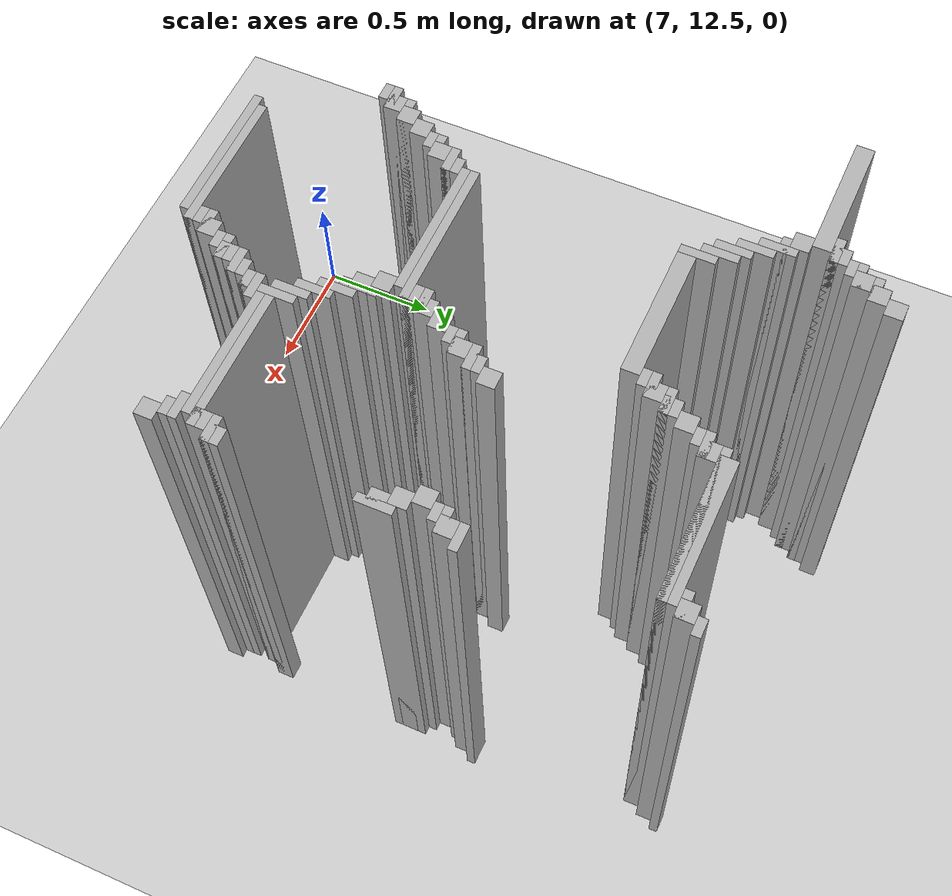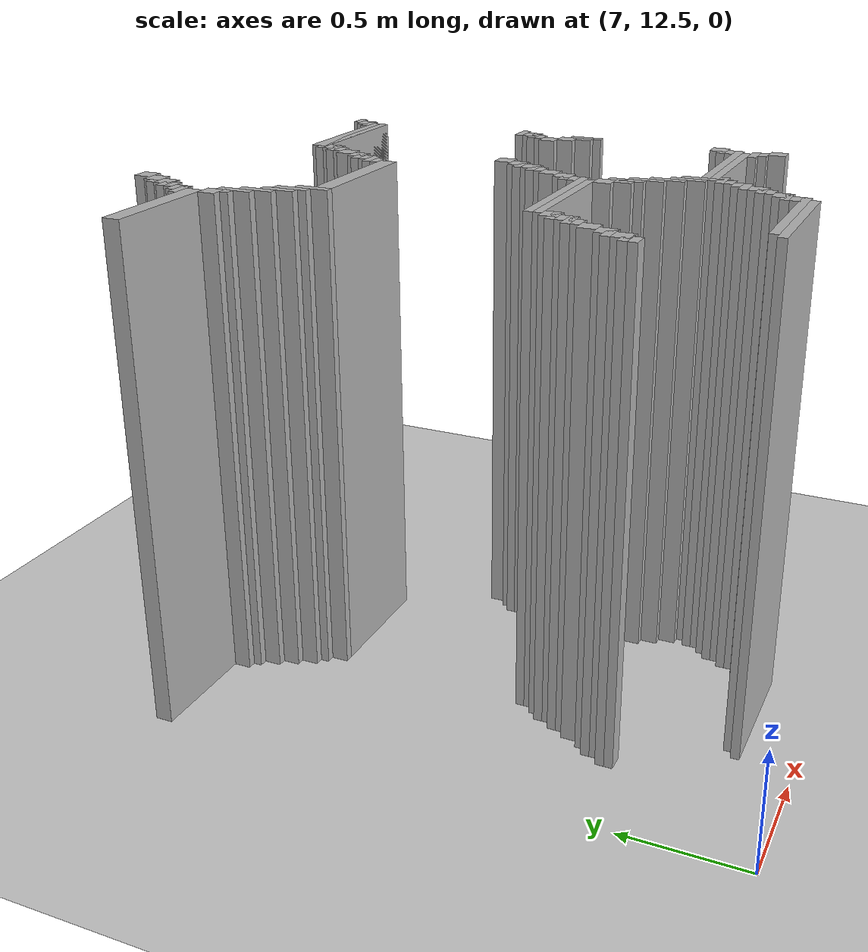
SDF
<sdf version="1.6">
 <world name="slam_world">
  <model name="ground_plane">
   <static>true</static>
   <link name="link">
    <collision name="collision">
     <geometry><plane><normal>0 0 1</normal><size>100 100</size></plane></geometry>
    </collision>
    <visual name="visual">
     <geometry><plane><normal>0 0 1</normal><size>100 100</size></plane></geometry>
     <material>
      <ambient>0.8 0.8 0.8 1</ambient>
      <diffuse>0.8 0.8 0.8 1</diffuse>
      <specular>0.8 0.8 0.8 1</specular>
     </material>
    </visual>
   </link>
  </model>
  <model name="wall_772">
   <static>true</static>
   <pose>7.552204176334106 15.139211136890951 1.0 0 0 0</pose>
   <link name="link">
    <collision name="collision">
     <geometry><box><size>0.06960556844547564 0.06960556844547564 2.0</size></box></geometry>
    </collision>
    <visual name="visual">
     <geometry><box><size>0.06960556844547564 0.06960556844547564 2.0</size></box></geometry>
     <material><ambient>0.5 0.5 0.5 1</ambient><diffuse>0.7 0.7 0.7 1</diffuse></material>
    </visual>
   </link>
  </model>
  <model name="wall_789">
   <static>true</static>
   <pose>7.517401392111369 15.069605568445475 1.0 0 0 0</pose>
   <link name="link">
    <collision name="collision">
     <geometry><box><size>0.06960556844547564 0.06960556844547564 2.0</size></box></geometry>
    </collision>
    <visual name="visual">
     <geometry><box><size>0.06960556844547564 0.06960556844547564 2.0</size></box></geometry>
     <material><ambient>0.5 0.5 0.5 1</ambient><diffuse>0.7 0.7 0.7 1</diffuse></material>
    </visual>
   </link>
  </model>
  <model name="wall_806">
   <static>true</static>
   <pose>7.5 15.052204176334106 1.0 0 0 0</pose>
   <link name="link">
    <collision name="collision">
     <geometry><box><size>0.10440835266821345 0.03480278422273782 2.0</size></box></geometry>
    </collision>
    <visual name="visual">
     <geometry><box><size>0.10440835266821345 0.03480278422273782 2.0</size></box></geometry>
     <material><ambient>0.5 0.5 0.5 1</ambient><diffuse>0.7 0.7 0.7 1</diffuse></material>
    </visual>
   </link>
  </model>
  <model name="wall_820">
   <static>true</static>
   <pose>7.48259860788863 15.0 1.0 0 0 0</pose>
   <link name="link">
    <collision name="collision">
     <geometry><box><size>0.06960556844547564 0.06960556844547564 2.0</size></box></geometry>
    </collision>
    <visual name="visual">
     <geometry><box><size>0.06960556844547564 0.06960556844547564 2.0</size></box></geometry>
     <material><ambient>0.5 0.5 0.5 1</ambient><diffuse>0.7 0.7 0.7 1</diffuse></material>
    </visual>
   </link>
  </model>
  <model name="wall_833">
   <static>true</static>
   <pose>7.465197215777262 14.982598607888631 1.0 0 0 0</pose>
   <link name="link">
    <collision name="collision">
     <geometry><box><size>0.10440835266821345 0.03480278422273782 2.0</size></box></geometry>
    </collision>
    <visual name="visual">
     <geometry><box><size>0.10440835266821345 0.03480278422273782 2.0</size></box></geometry>
     <material><ambient>0.5 0.5 0.5 1</ambient><diffuse>0.7 0.7 0.7 1</diffuse></material>
    </visual>
   </link>
  </model>
  <model name="wall_846">
   <static>true</static>
   <pose>7.447795823665893 14.947795823665892 1.0 0 0 0</pose>
   <link name="link">
    <collision name="collision">
     <geometry><box><size>0.06960556844547564 0.03480278422273782 2.0</size></box></geometry>
    </collision>
    <visual name="visual">
     <geometry><box><size>0.06960556844547564 0.03480278422273782 2.0</size></box></geometry>
     <material><ambient>0.5 0.5 0.5 1</ambient><diffuse>0.7 0.7 0.7 1</diffuse></material>
    </visual>
   </link>
  </model>
  <model name="wall_847">
   <static>true</static>
   <pose>8.909512761020881 14.947795823665892 1.0 0 0 0</pose>
   <link name="link">
    <collision name="collision">
     <geometry><box><size>0.06960556844547564 0.03480278422273782 2.0</size></box></geometry>
    </collision>
    <visual name="visual">
     <geometry><box><size>0.06960556844547564 0.03480278422273782 2.0</size></box></geometry>
     <material><ambient>0.5 0.5 0.5 1</ambient><diffuse>0.7 0.7 0.7 1</diffuse></material>
    </visual>
   </link>
  </model>
  <model name="wall_859">
   <static>true</static>
   <pose>7.412993039443156 14.895591647331786 1.0 0 0 0</pose>
   <link name="link">
    <collision name="collision">
     <geometry><box><size>0.06960556844547564 0.06960556844547564 2.0</size></box></geometry>
    </collision>
    <visual name="visual">
     <geometry><box><size>0.06960556844547564 0.06960556844547564 2.0</size></box></geometry>
     <material><ambient>0.5 0.5 0.5 1</ambient><diffuse>0.7 0.7 0.7 1</diffuse></material>
    </visual>
   </link>
  </model>
  <model name="wall_860">
   <static>true</static>
   <pose>8.874709976798144 14.895591647331786 1.0 0 0 0</pose>
   <link name="link">
    <collision name="collision">
     <geometry><box><size>0.06960556844547564 0.06960556844547564 2.0</size></box></geometry>
    </collision>
    <visual name="visual">
     <geometry><box><size>0.06960556844547564 0.06960556844547564 2.0</size></box></geometry>
     <material><ambient>0.5 0.5 0.5 1</ambient><diffuse>0.7 0.7 0.7 1</diffuse></material>
    </visual>
   </link>
  </model>
  <model name="wall_871">
   <static>true</static>
   <pose>7.395591647331786 14.878190255220417 1.0 0 0 0</pose>
   <link name="link">
    <collision name="collision">
     <geometry><box><size>0.10440835266821345 0.03480278422273782 2.0</size></box></geometry>
    </collision>
    <visual name="visual">
     <geometry><box><size>0.10440835266821345 0.03480278422273782 2.0</size></box></geometry>
     <material><ambient>0.5 0.5 0.5 1</ambient><diffuse>0.7 0.7 0.7 1</diffuse></material>
    </visual>
   </link>
  </model>
  <model name="wall_872">
   <static>true</static>
   <pose>8.857308584686775 14.878190255220417 1.0 0 0 0</pose>
   <link name="link">
    <collision name="collision">
     <geometry><box><size>0.10440835266821345 0.03480278422273782 2.0</size></box></geometry>
    </collision>
    <visual name="visual">
     <geometry><box><size>0.10440835266821345 0.03480278422273782 2.0</size></box></geometry>
     <material><ambient>0.5 0.5 0.5 1</ambient><diffuse>0.7 0.7 0.7 1</diffuse></material>
    </visual>
   </link>
  </model>
  <model name="wall_881">
   <static>true</static>
   <pose>7.16937354988399 14.825986078886311 1.0 0 0 0</pose>
   <link name="link">
    <collision name="collision">
     <geometry><box><size>0.4872389791183295 0.06960556844547564 2.0</size></box></geometry>
    </collision>
    <visual name="visual">
     <geometry><box><size>0.4872389791183295 0.06960556844547564 2.0</size></box></geometry>
     <material><ambient>0.5 0.5 0.5 1</ambient><diffuse>0.7 0.7 0.7 1</diffuse></material>
    </visual>
   </link>
  </model>
  <model name="wall_882">
   <static>true</static>
   <pose>8.596287703016241 14.825986078886311 1.0 0 0 0</pose>
   <link name="link">
    <collision name="collision">
     <geometry><box><size>0.5568445475638051 0.06960556844547564 2.0</size></box></geometry>
    </collision>
    <visual name="visual">
     <geometry><box><size>0.5568445475638051 0.06960556844547564 2.0</size></box></geometry>
     <material><ambient>0.5 0.5 0.5 1</ambient><diffuse>0.7 0.7 0.7 1</diffuse></material>
    </visual>
   </link>
  </model>
  <model name="wall_897">
   <static>true</static>
   <pose>8.578886310904872 14.80858468677494 1.0 0 0 0</pose>
   <link name="link">
    <collision name="collision">
     <geometry><box><size>0.5916473317865429 0.03480278422273782 2.0</size></box></geometry>
    </collision>
    <visual name="visual">
     <geometry><box><size>0.5916473317865429 0.03480278422273782 2.0</size></box></geometry>
     <material><ambient>0.5 0.5 0.5 1</ambient><diffuse>0.7 0.7 0.7 1</diffuse></material>
    </visual>
   </link>
  </model>
  <model name="wall_910">
   <static>true</static>
   <pose>7.412993039443156 14.756380510440835 1.0 0 0 0</pose>
   <link name="link">
    <collision name="collision">
     <geometry><box><size>0.06960556844547564 0.06960556844547564 2.0</size></box></geometry>
    </collision>
    <visual name="visual">
     <geometry><box><size>0.06960556844547564 0.06960556844547564 2.0</size></box></geometry>
     <material><ambient>0.5 0.5 0.5 1</ambient><diffuse>0.7 0.7 0.7 1</diffuse></material>
    </visual>
   </link>
  </model>
  <model name="wall_911">
   <static>true</static>
   <pose>8.317865429234338 14.756380510440835 1.0 0 0 0</pose>
   <link name="link">
    <collision name="collision">
     <geometry><box><size>0.06960556844547564 0.06960556844547564 2.0</size></box></geometry>
    </collision>
    <visual name="visual">
     <geometry><box><size>0.06960556844547564 0.06960556844547564 2.0</size></box></geometry>
     <material><ambient>0.5 0.5 0.5 1</ambient><diffuse>0.7 0.7 0.7 1</diffuse></material>
    </visual>
   </link>
  </model>
  <model name="wall_925">
   <static>true</static>
   <pose>7.465197215777262 14.68677494199536 1.0 0 0 0</pose>
   <link name="link">
    <collision name="collision">
     <geometry><box><size>0.03480278422273782 0.13921113689095127 2.0</size></box></geometry>
    </collision>
    <visual name="visual">
     <geometry><box><size>0.03480278422273782 0.13921113689095127 2.0</size></box></geometry>
     <material><ambient>0.5 0.5 0.5 1</ambient><diffuse>0.7 0.7 0.7 1</diffuse></material>
    </visual>
   </link>
  </model>
  <model name="wall_926">
   <static>true</static>
   <pose>8.30046403712297 14.738979118329466 1.0 0 0 0</pose>
   <link name="link">
    <collision name="collision">
     <geometry><box><size>0.10440835266821345 0.03480278422273782 2.0</size></box></geometry>
    </collision>
    <visual name="visual">
     <geometry><box><size>0.10440835266821345 0.03480278422273782 2.0</size></box></geometry>
     <material><ambient>0.5 0.5 0.5 1</ambient><diffuse>0.7 0.7 0.7 1</diffuse></material>
    </visual>
   </link>
  </model>
  <model name="wall_936">
   <static>true</static>
   <pose>7.447795823665893 14.704176334106728 1.0 0 0 0</pose>
   <link name="link">
    <collision name="collision">
     <geometry><box><size>0.06960556844547564 0.03480278422273782 2.0</size></box></geometry>
    </collision>
    <visual name="visual">
     <geometry><box><size>0.06960556844547564 0.03480278422273782 2.0</size></box></geometry>
     <material><ambient>0.5 0.5 0.5 1</ambient><diffuse>0.7 0.7 0.7 1</diffuse></material>
    </visual>
   </link>
  </model>
  <model name="wall_937">
   <static>true</static>
   <pose>8.2830626450116 14.704176334106728 1.0 0 0 0</pose>
   <link name="link">
    <collision name="collision">
     <geometry><box><size>0.06960556844547564 0.03480278422273782 2.0</size></box></geometry>
    </collision>
    <visual name="visual">
     <geometry><box><size>0.06960556844547564 0.03480278422273782 2.0</size></box></geometry>
     <material><ambient>0.5 0.5 0.5 1</ambient><diffuse>0.7 0.7 0.7 1</diffuse></material>
    </visual>
   </link>
  </model>
  <model name="wall_948">
   <static>true</static>
   <pose>7.5 14.617169373549883 1.0 0 0 0</pose>
   <link name="link">
    <collision name="collision">
     <geometry><box><size>0.03480278422273782 0.13921113689095127 2.0</size></box></geometry>
    </collision>
    <visual name="visual">
     <geometry><box><size>0.03480278422273782 0.13921113689095127 2.0</size></box></geometry>
     <material><ambient>0.5 0.5 0.5 1</ambient><diffuse>0.7 0.7 0.7 1</diffuse></material>
    </visual>
   </link>
  </model>
  <model name="wall_949">
   <static>true</static>
   <pose>8.248259860788863 14.65197215777262 1.0 0 0 0</pose>
   <link name="link">
    <collision name="collision">
     <geometry><box><size>0.06960556844547564 0.06960556844547564 2.0</size></box></geometry>
    </collision>
    <visual name="visual">
     <geometry><box><size>0.06960556844547564 0.06960556844547564 2.0</size></box></geometry>
     <material><ambient>0.5 0.5 0.5 1</ambient><diffuse>0.7 0.7 0.7 1</diffuse></material>
    </visual>
   </link>
  </model>
  <model name="wall_963">
   <static>true</static>
   <pose>7.534802784222737 14.547563805104408 1.0 0 0 0</pose>
   <link name="link">
    <collision name="collision">
     <geometry><box><size>0.03480278422273782 0.13921113689095127 2.0</size></box></geometry>
    </collision>
    <visual name="visual">
     <geometry><box><size>0.03480278422273782 0.13921113689095127 2.0</size></box></geometry>
     <material><ambient>0.5 0.5 0.5 1</ambient><diffuse>0.7 0.7 0.7 1</diffuse></material>
    </visual>
   </link>
  </model>
  <model name="wall_964">
   <static>true</static>
   <pose>8.213457076566124 14.582366589327146 1.0 0 0 0</pose>
   <link name="link">
    <collision name="collision">
     <geometry><box><size>0.06960556844547564 0.06960556844547564 2.0</size></box></geometry>
    </collision>
    <visual name="visual">
     <geometry><box><size>0.06960556844547564 0.06960556844547564 2.0</size></box></geometry>
     <material><ambient>0.5 0.5 0.5 1</ambient><diffuse>0.7 0.7 0.7 1</diffuse></material>
    </visual>
   </link>
  </model>
  <model name="wall_978">
   <static>true</static>
   <pose>7.569605568445476 14.512761020881669 1.0 0 0 0</pose>
   <link name="link">
    <collision name="collision">
     <geometry><box><size>0.03480278422273782 0.13921113689095127 2.0</size></box></geometry>
    </collision>
    <visual name="visual">
     <geometry><box><size>0.03480278422273782 0.13921113689095127 2.0</size></box></geometry>
     <material><ambient>0.5 0.5 0.5 1</ambient><diffuse>0.7 0.7 0.7 1</diffuse></material>
    </visual>
   </link>
  </model>
  <model name="wall_979">
   <static>true</static>
   <pose>8.196055684454755 14.564965197215777 1.0 0 0 0</pose>
   <link name="link">
    <collision name="collision">
     <geometry><box><size>0.10440835266821345 0.03480278422273782 2.0</size></box></geometry>
    </collision>
    <visual name="visual">
     <geometry><box><size>0.10440835266821345 0.03480278422273782 2.0</size></box></geometry>
     <material><ambient>0.5 0.5 0.5 1</ambient><diffuse>0.7 0.7 0.7 1</diffuse></material>
    </visual>
   </link>
  </model>
  <model name="wall_989">
   <static>true</static>
   <pose>8.178654292343387 14.512761020881669 1.0 0 0 0</pose>
   <link name="link">
    <collision name="collision">
     <geometry><box><size>0.06960556844547564 0.06960556844547564 2.0</size></box></geometry>
    </collision>
    <visual name="visual">
     <geometry><box><size>0.06960556844547564 0.06960556844547564 2.0</size></box></geometry>
     <material><ambient>0.5 0.5 0.5 1</ambient><diffuse>0.7 0.7 0.7 1</diffuse></material>
    </visual>
   </link>
  </model>
  <model name="wall_999">
   <static>true</static>
   <pose>7.604408352668213 14.443155452436194 1.0 0 0 0</pose>
   <link name="link">
    <collision name="collision">
     <geometry><box><size>0.03480278422273782 0.13921113689095127 2.0</size></box></geometry>
    </collision>
    <visual name="visual">
     <geometry><box><size>0.03480278422273782 0.13921113689095127 2.0</size></box></geometry>
     <material><ambient>0.5 0.5 0.5 1</ambient><diffuse>0.7 0.7 0.7 1</diffuse></material>
    </visual>
   </link>
  </model>
  <model name="wall_1000">
   <static>true</static>
   <pose>8.161252900232018 14.4953596287703 1.0 0 0 0</pose>
   <link name="link">
    <collision name="collision">
     <geometry><box><size>0.10440835266821345 0.03480278422273782 2.0</size></box></geometry>
    </collision>
    <visual name="visual">
     <geometry><box><size>0.10440835266821345 0.03480278422273782 2.0</size></box></geometry>
     <material><ambient>0.5 0.5 0.5 1</ambient><diffuse>0.7 0.7 0.7 1</diffuse></material>
    </visual>
   </link>
  </model>
  <model name="wall_1010">
   <static>true</static>
   <pose>8.14385150812065 14.460556844547563 1.0 0 0 0</pose>
   <link name="link">
    <collision name="collision">
     <geometry><box><size>0.06960556844547564 0.03480278422273782 2.0</size></box></geometry>
    </collision>
    <visual name="visual">
     <geometry><box><size>0.06960556844547564 0.03480278422273782 2.0</size></box></geometry>
     <material><ambient>0.5 0.5 0.5 1</ambient><diffuse>0.7 0.7 0.7 1</diffuse></material>
    </visual>
   </link>
  </model>
  <model name="wall_1020">
   <static>true</static>
   <pose>7.882830626450116 14.408352668213457 1.0 0 0 0</pose>
   <link name="link">
    <collision name="collision">
     <geometry><box><size>0.5220417633410672 0.06960556844547564 2.0</size></box></geometry>
    </collision>
    <visual name="visual">
     <geometry><box><size>0.5220417633410672 0.06960556844547564 2.0</size></box></geometry>
     <material><ambient>0.5 0.5 0.5 1</ambient><diffuse>0.7 0.7 0.7 1</diffuse></material>
    </visual>
   </link>
  </model>
  <model name="wall_1105">
   <static>true</static>
   <pose>8.92691415313225 14.147331786542923 1.0 0 0 0</pose>
   <link name="link">
    <collision name="collision">
     <geometry><box><size>0.10440835266821345 0.03480278422273782 2.0</size></box></geometry>
    </collision>
    <visual name="visual">
     <geometry><box><size>0.10440835266821345 0.03480278422273782 2.0</size></box></geometry>
     <material><ambient>0.5 0.5 0.5 1</ambient><diffuse>0.7 0.7 0.7 1</diffuse></material>
    </visual>
   </link>
  </model>
  <model name="wall_1115">
   <static>true</static>
   <pose>8.909512761020881 14.095127610208817 1.0 0 0 0</pose>
   <link name="link">
    <collision name="collision">
     <geometry><box><size>0.06960556844547564 0.06960556844547564 2.0</size></box></geometry>
    </collision>
    <visual name="visual">
     <geometry><box><size>0.06960556844547564 0.06960556844547564 2.0</size></box></geometry>
     <material><ambient>0.5 0.5 0.5 1</ambient><diffuse>0.7 0.7 0.7 1</diffuse></material>
    </visual>
   </link>
  </model>
  <model name="wall_1125">
   <static>true</static>
   <pose>8.892111368909513 14.077726218097448 1.0 0 0 0</pose>
   <link name="link">
    <collision name="collision">
     <geometry><box><size>0.10440835266821345 0.03480278422273782 2.0</size></box></geometry>
    </collision>
    <visual name="visual">
     <geometry><box><size>0.10440835266821345 0.03480278422273782 2.0</size></box></geometry>
     <material><ambient>0.5 0.5 0.5 1</ambient><diffuse>0.7 0.7 0.7 1</diffuse></material>
    </visual>
   </link>
  </model>
  <model name="wall_1135">
   <static>true</static>
   <pose>8.874709976798144 14.042923433874709 1.0 0 0 0</pose>
   <link name="link">
    <collision name="collision">
     <geometry><box><size>0.06960556844547564 0.03480278422273782 2.0</size></box></geometry>
    </collision>
    <visual name="visual">
     <geometry><box><size>0.06960556844547564 0.03480278422273782 2.0</size></box></geometry>
     <material><ambient>0.5 0.5 0.5 1</ambient><diffuse>0.7 0.7 0.7 1</diffuse></material>
    </visual>
   </link>
  </model>
  <model name="wall_1145">
   <static>true</static>
   <pose>8.352668213457076 13.990719257540603 1.0 0 0 0</pose>
   <link name="link">
    <collision name="collision">
     <geometry><box><size>0.06960556844547564 0.06960556844547564 2.0</size></box></geometry>
    </collision>
    <visual name="visual">
     <geometry><box><size>0.06960556844547564 0.06960556844547564 2.0</size></box></geometry>
     <material><ambient>0.5 0.5 0.5 1</ambient><diffuse>0.7 0.7 0.7 1</diffuse></material>
    </visual>
   </link>
  </model>
  <model name="wall_1146">
   <static>true</static>
   <pose>8.839907192575406 13.990719257540603 1.0 0 0 0</pose>
   <link name="link">
    <collision name="collision">
     <geometry><box><size>0.06960556844547564 0.06960556844547564 2.0</size></box></geometry>
    </collision>
    <visual name="visual">
     <geometry><box><size>0.06960556844547564 0.06960556844547564 2.0</size></box></geometry>
     <material><ambient>0.5 0.5 0.5 1</ambient><diffuse>0.7 0.7 0.7 1</diffuse></material>
    </visual>
   </link>
  </model>
  <model name="wall_1160">
   <static>true</static>
   <pose>8.317865429234338 13.921113689095128 1.0 0 0 0</pose>
   <link name="link">
    <collision name="collision">
     <geometry><box><size>0.06960556844547564 0.06960556844547564 2.0</size></box></geometry>
    </collision>
    <visual name="visual">
     <geometry><box><size>0.06960556844547564 0.06960556844547564 2.0</size></box></geometry>
     <material><ambient>0.5 0.5 0.5 1</ambient><diffuse>0.7 0.7 0.7 1</diffuse></material>
    </visual>
   </link>
  </model>
  <model name="wall_1161">
   <static>true</static>
   <pose>8.874709976798144 13.921113689095128 1.0 0 0 0</pose>
   <link name="link">
    <collision name="collision">
     <geometry><box><size>0.06960556844547564 0.06960556844547564 2.0</size></box></geometry>
    </collision>
    <visual name="visual">
     <geometry><box><size>0.06960556844547564 0.06960556844547564 2.0</size></box></geometry>
     <material><ambient>0.5 0.5 0.5 1</ambient><diffuse>0.7 0.7 0.7 1</diffuse></material>
    </visual>
   </link>
  </model>
  <model name="wall_1176">
   <static>true</static>
   <pose>8.30046403712297 13.903712296983759 1.0 0 0 0</pose>
   <link name="link">
    <collision name="collision">
     <geometry><box><size>0.10440835266821345 0.03480278422273782 2.0</size></box></geometry>
    </collision>
    <visual name="visual">
     <geometry><box><size>0.10440835266821345 0.03480278422273782 2.0</size></box></geometry>
     <material><ambient>0.5 0.5 0.5 1</ambient><diffuse>0.7 0.7 0.7 1</diffuse></material>
    </visual>
   </link>
  </model>
  <model name="wall_1177">
   <static>true</static>
   <pose>8.92691415313225 13.851508120649651 1.0 0 0 0</pose>
   <link name="link">
    <collision name="collision">
     <geometry><box><size>0.03480278422273782 0.13921113689095127 2.0</size></box></geometry>
    </collision>
    <visual name="visual">
     <geometry><box><size>0.03480278422273782 0.13921113689095127 2.0</size></box></geometry>
     <material><ambient>0.5 0.5 0.5 1</ambient><diffuse>0.7 0.7 0.7 1</diffuse></material>
    </visual>
   </link>
  </model>
  <model name="wall_1192">
   <static>true</static>
   <pose>8.2830626450116 13.851508120649651 1.0 0 0 0</pose>
   <link name="link">
    <collision name="collision">
     <geometry><box><size>0.06960556844547564 0.06960556844547564 2.0</size></box></geometry>
    </collision>
    <visual name="visual">
     <geometry><box><size>0.06960556844547564 0.06960556844547564 2.0</size></box></geometry>
     <material><ambient>0.5 0.5 0.5 1</ambient><diffuse>0.7 0.7 0.7 1</diffuse></material>
    </visual>
   </link>
  </model>
  <model name="wall_1193">
   <static>true</static>
   <pose>8.909512761020881 13.851508120649651 1.0 0 0 0</pose>
   <link name="link">
    <collision name="collision">
     <geometry><box><size>0.06960556844547564 0.06960556844547564 2.0</size></box></geometry>
    </collision>
    <visual name="visual">
     <geometry><box><size>0.06960556844547564 0.06960556844547564 2.0</size></box></geometry>
     <material><ambient>0.5 0.5 0.5 1</ambient><diffuse>0.7 0.7 0.7 1</diffuse></material>
    </visual>
   </link>
  </model>
  <model name="wall_1208">
   <static>true</static>
   <pose>8.265661252900232 13.834106728538282 1.0 0 0 0</pose>
   <link name="link">
    <collision name="collision">
     <geometry><box><size>0.10440835266821345 0.03480278422273782 2.0</size></box></geometry>
    </collision>
    <visual name="visual">
     <geometry><box><size>0.10440835266821345 0.03480278422273782 2.0</size></box></geometry>
     <material><ambient>0.5 0.5 0.5 1</ambient><diffuse>0.7 0.7 0.7 1</diffuse></material>
    </visual>
   </link>
  </model>
  <model name="wall_1220">
   <static>true</static>
   <pose>8.248259860788863 13.799303944315545 1.0 0 0 0</pose>
   <link name="link">
    <collision name="collision">
     <geometry><box><size>0.06960556844547564 0.03480278422273782 2.0</size></box></geometry>
    </collision>
    <visual name="visual">
     <geometry><box><size>0.06960556844547564 0.03480278422273782 2.0</size></box></geometry>
     <material><ambient>0.5 0.5 0.5 1</ambient><diffuse>0.7 0.7 0.7 1</diffuse></material>
    </visual>
   </link>
  </model>
  <model name="wall_1232">
   <static>true</static>
   <pose>8.213457076566124 13.747099767981437 1.0 0 0 0</pose>
   <link name="link">
    <collision name="collision">
     <geometry><box><size>0.06960556844547564 0.06960556844547564 2.0</size></box></geometry>
    </collision>
    <visual name="visual">
     <geometry><box><size>0.06960556844547564 0.06960556844547564 2.0</size></box></geometry>
     <material><ambient>0.5 0.5 0.5 1</ambient><diffuse>0.7 0.7 0.7 1</diffuse></material>
    </visual>
   </link>
  </model>
  <model name="wall_1248">
   <static>true</static>
   <pose>8.178654292343387 13.677494199535962 1.0 0 0 0</pose>
   <link name="link">
    <collision name="collision">
     <geometry><box><size>0.06960556844547564 0.06960556844547564 2.0</size></box></geometry>
    </collision>
    <visual name="visual">
     <geometry><box><size>0.06960556844547564 0.06960556844547564 2.0</size></box></geometry>
     <material><ambient>0.5 0.5 0.5 1</ambient><diffuse>0.7 0.7 0.7 1</diffuse></material>
    </visual>
   </link>
  </model>
  <model name="wall_1264">
   <static>true</static>
   <pose>8.161252900232018 13.660092807424594 1.0 0 0 0</pose>
   <link name="link">
    <collision name="collision">
     <geometry><box><size>0.10440835266821345 0.03480278422273782 2.0</size></box></geometry>
    </collision>
    <visual name="visual">
     <geometry><box><size>0.10440835266821345 0.03480278422273782 2.0</size></box></geometry>
     <material><ambient>0.5 0.5 0.5 1</ambient><diffuse>0.7 0.7 0.7 1</diffuse></material>
    </visual>
   </link>
  </model>
  <model name="wall_1276">
   <static>true</static>
   <pose>8.14385150812065 13.607888631090487 1.0 0 0 0</pose>
   <link name="link">
    <collision name="collision">
     <geometry><box><size>0.06960556844547564 0.06960556844547564 2.0</size></box></geometry>
    </collision>
    <visual name="visual">
     <geometry><box><size>0.06960556844547564 0.06960556844547564 2.0</size></box></geometry>
     <material><ambient>0.5 0.5 0.5 1</ambient><diffuse>0.7 0.7 0.7 1</diffuse></material>
    </visual>
   </link>
  </model>
  <model name="wall_1288">
   <static>true</static>
   <pose>7.882830626450116 13.590487238979117 1.0 0 0 0</pose>
   <link name="link">
    <collision name="collision">
     <geometry><box><size>0.5916473317865429 0.03480278422273782 2.0</size></box></geometry>
    </collision>
    <visual name="visual">
     <geometry><box><size>0.5916473317865429 0.03480278422273782 2.0</size></box></geometry>
     <material><ambient>0.5 0.5 0.5 1</ambient><diffuse>0.7 0.7 0.7 1</diffuse></material>
    </visual>
   </link>
  </model>
  <model name="wall_1299">
   <static>true</static>
   <pose>7.865429234338746 13.55568445475638 1.0 0 0 0</pose>
   <link name="link">
    <collision name="collision">
     <geometry><box><size>0.5568445475638051 0.03480278422273782 2.0</size></box></geometry>
    </collision>
    <visual name="visual">
     <geometry><box><size>0.5568445475638051 0.03480278422273782 2.0</size></box></geometry>
     <material><ambient>0.5 0.5 0.5 1</ambient><diffuse>0.7 0.7 0.7 1</diffuse></material>
    </visual>
   </link>
  </model>
  <model name="wall_1309">
   <static>true</static>
   <pose>7.587006960556844 13.503480278422273 1.0 0 0 0</pose>
   <link name="link">
    <collision name="collision">
     <geometry><box><size>0.06960556844547564 0.06960556844547564 2.0</size></box></geometry>
    </collision>
    <visual name="visual">
     <geometry><box><size>0.06960556844547564 0.06960556844547564 2.0</size></box></geometry>
     <material><ambient>0.5 0.5 0.5 1</ambient><diffuse>0.7 0.7 0.7 1</diffuse></material>
    </visual>
   </link>
  </model>
  <model name="wall_1310">
   <static>true</static>
   <pose>8.14385150812065 13.503480278422273 1.0 0 0 0</pose>
   <link name="link">
    <collision name="collision">
     <geometry><box><size>0.06960556844547564 0.06960556844547564 2.0</size></box></geometry>
    </collision>
    <visual name="visual">
     <geometry><box><size>0.06960556844547564 0.06960556844547564 2.0</size></box></geometry>
     <material><ambient>0.5 0.5 0.5 1</ambient><diffuse>0.7 0.7 0.7 1</diffuse></material>
    </visual>
   </link>
  </model>
  <model name="wall_1323">
   <static>true</static>
   <pose>7.569605568445476 13.486078886310905 1.0 0 0 0</pose>
   <link name="link">
    <collision name="collision">
     <geometry><box><size>0.10440835266821345 0.03480278422273782 2.0</size></box></geometry>
    </collision>
    <visual name="visual">
     <geometry><box><size>0.10440835266821345 0.03480278422273782 2.0</size></box></geometry>
     <material><ambient>0.5 0.5 0.5 1</ambient><diffuse>0.7 0.7 0.7 1</diffuse></material>
    </visual>
   </link>
  </model>
  <model name="wall_1324">
   <static>true</static>
   <pose>8.196055684454755 13.433874709976797 1.0 0 0 0</pose>
   <link name="link">
    <collision name="collision">
     <geometry><box><size>0.03480278422273782 0.13921113689095127 2.0</size></box></geometry>
    </collision>
    <visual name="visual">
     <geometry><box><size>0.03480278422273782 0.13921113689095127 2.0</size></box></geometry>
     <material><ambient>0.5 0.5 0.5 1</ambient><diffuse>0.7 0.7 0.7 1</diffuse></material>
    </visual>
   </link>
  </model>
  <model name="wall_1337">
   <static>true</static>
   <pose>7.552204176334106 13.433874709976797 1.0 0 0 0</pose>
   <link name="link">
    <collision name="collision">
     <geometry><box><size>0.06960556844547564 0.06960556844547564 2.0</size></box></geometry>
    </collision>
    <visual name="visual">
     <geometry><box><size>0.06960556844547564 0.06960556844547564 2.0</size></box></geometry>
     <material><ambient>0.5 0.5 0.5 1</ambient><diffuse>0.7 0.7 0.7 1</diffuse></material>
    </visual>
   </link>
  </model>
  <model name="wall_1338">
   <static>true</static>
   <pose>8.178654292343387 13.433874709976797 1.0 0 0 0</pose>
   <link name="link">
    <collision name="collision">
     <geometry><box><size>0.06960556844547564 0.06960556844547564 2.0</size></box></geometry>
    </collision>
    <visual name="visual">
     <geometry><box><size>0.06960556844547564 0.06960556844547564 2.0</size></box></geometry>
     <material><ambient>0.5 0.5 0.5 1</ambient><diffuse>0.7 0.7 0.7 1</diffuse></material>
    </visual>
   </link>
  </model>
  <model name="wall_1351">
   <static>true</static>
   <pose>7.534802784222737 13.416473317865428 1.0 0 0 0</pose>
   <link name="link">
    <collision name="collision">
     <geometry><box><size>0.10440835266821345 0.03480278422273782 2.0</size></box></geometry>
    </collision>
    <visual name="visual">
     <geometry><box><size>0.10440835266821345 0.03480278422273782 2.0</size></box></geometry>
     <material><ambient>0.5 0.5 0.5 1</ambient><diffuse>0.7 0.7 0.7 1</diffuse></material>
    </visual>
   </link>
  </model>
  <model name="wall_1352">
   <static>true</static>
   <pose>8.230858468677495 13.364269141531322 1.0 0 0 0</pose>
   <link name="link">
    <collision name="collision">
     <geometry><box><size>0.03480278422273782 0.13921113689095127 2.0</size></box></geometry>
    </collision>
    <visual name="visual">
     <geometry><box><size>0.03480278422273782 0.13921113689095127 2.0</size></box></geometry>
     <material><ambient>0.5 0.5 0.5 1</ambient><diffuse>0.7 0.7 0.7 1</diffuse></material>
    </visual>
   </link>
  </model>
  <model name="wall_1363">
   <static>true</static>
   <pose>7.517401392111369 13.38167053364269 1.0 0 0 0</pose>
   <link name="link">
    <collision name="collision">
     <geometry><box><size>0.06960556844547564 0.03480278422273782 2.0</size></box></geometry>
    </collision>
    <visual name="visual">
     <geometry><box><size>0.06960556844547564 0.03480278422273782 2.0</size></box></geometry>
     <material><ambient>0.5 0.5 0.5 1</ambient><diffuse>0.7 0.7 0.7 1</diffuse></material>
    </visual>
   </link>
  </model>
  <model name="wall_1374">
   <static>true</static>
   <pose>7.48259860788863 13.329466357308585 1.0 0 0 0</pose>
   <link name="link">
    <collision name="collision">
     <geometry><box><size>0.06960556844547564 0.06960556844547564 2.0</size></box></geometry>
    </collision>
    <visual name="visual">
     <geometry><box><size>0.06960556844547564 0.06960556844547564 2.0</size></box></geometry>
     <material><ambient>0.5 0.5 0.5 1</ambient><diffuse>0.7 0.7 0.7 1</diffuse></material>
    </visual>
   </link>
  </model>
  <model name="wall_1375">
   <static>true</static>
   <pose>8.265661252900232 13.294663573085847 1.0 0 0 0</pose>
   <link name="link">
    <collision name="collision">
     <geometry><box><size>0.03480278422273782 0.13921113689095127 2.0</size></box></geometry>
    </collision>
    <visual name="visual">
     <geometry><box><size>0.03480278422273782 0.13921113689095127 2.0</size></box></geometry>
     <material><ambient>0.5 0.5 0.5 1</ambient><diffuse>0.7 0.7 0.7 1</diffuse></material>
    </visual>
   </link>
  </model>
  <model name="wall_1388">
   <static>true</static>
   <pose>7.447795823665893 13.259860788863108 1.0 0 0 0</pose>
   <link name="link">
    <collision name="collision">
     <geometry><box><size>0.06960556844547564 0.06960556844547564 2.0</size></box></geometry>
    </collision>
    <visual name="visual">
     <geometry><box><size>0.06960556844547564 0.06960556844547564 2.0</size></box></geometry>
     <material><ambient>0.5 0.5 0.5 1</ambient><diffuse>0.7 0.7 0.7 1</diffuse></material>
    </visual>
   </link>
  </model>
  <model name="wall_1389">
   <static>true</static>
   <pose>8.30046403712297 13.22505800464037 1.0 0 0 0</pose>
   <link name="link">
    <collision name="collision">
     <geometry><box><size>0.03480278422273782 0.13921113689095127 2.0</size></box></geometry>
    </collision>
    <visual name="visual">
     <geometry><box><size>0.03480278422273782 0.13921113689095127 2.0</size></box></geometry>
     <material><ambient>0.5 0.5 0.5 1</ambient><diffuse>0.7 0.7 0.7 1</diffuse></material>
    </visual>
   </link>
  </model>
  <model name="wall_1390">
   <static>true</static>
   <pose>8.909512761020881 13.259860788863108 1.0 0 0 0</pose>
   <link name="link">
    <collision name="collision">
     <geometry><box><size>0.06960556844547564 0.06960556844547564 2.0</size></box></geometry>
    </collision>
    <visual name="visual">
     <geometry><box><size>0.06960556844547564 0.06960556844547564 2.0</size></box></geometry>
     <material><ambient>0.5 0.5 0.5 1</ambient><diffuse>0.7 0.7 0.7 1</diffuse></material>
    </visual>
   </link>
  </model>
  <model name="wall_1402">
   <static>true</static>
   <pose>7.430394431554524 13.24245939675174 1.0 0 0 0</pose>
   <link name="link">
    <collision name="collision">
     <geometry><box><size>0.10440835266821345 0.03480278422273782 2.0</size></box></geometry>
    </collision>
    <visual name="visual">
     <geometry><box><size>0.10440835266821345 0.03480278422273782 2.0</size></box></geometry>
     <material><ambient>0.5 0.5 0.5 1</ambient><diffuse>0.7 0.7 0.7 1</diffuse></material>
    </visual>
   </link>
  </model>
  <model name="wall_1403">
   <static>true</static>
   <pose>8.335266821345707 13.155452436194896 1.0 0 0 0</pose>
   <link name="link">
    <collision name="collision">
     <geometry><box><size>0.03480278422273782 0.2088167053364269 2.0</size></box></geometry>
    </collision>
    <visual name="visual">
     <geometry><box><size>0.03480278422273782 0.2088167053364269 2.0</size></box></geometry>
     <material><ambient>0.5 0.5 0.5 1</ambient><diffuse>0.7 0.7 0.7 1</diffuse></material>
    </visual>
   </link>
  </model>
  <model name="wall_1404">
   <static>true</static>
   <pose>8.892111368909513 13.24245939675174 1.0 0 0 0</pose>
   <link name="link">
    <collision name="collision">
     <geometry><box><size>0.10440835266821345 0.03480278422273782 2.0</size></box></geometry>
    </collision>
    <visual name="visual">
     <geometry><box><size>0.10440835266821345 0.03480278422273782 2.0</size></box></geometry>
     <material><ambient>0.5 0.5 0.5 1</ambient><diffuse>0.7 0.7 0.7 1</diffuse></material>
    </visual>
   </link>
  </model>
  <model name="wall_1414">
   <static>true</static>
   <pose>7.412993039443156 13.190255220417633 1.0 0 0 0</pose>
   <link name="link">
    <collision name="collision">
     <geometry><box><size>0.06960556844547564 0.06960556844547564 2.0</size></box></geometry>
    </collision>
    <visual name="visual">
     <geometry><box><size>0.06960556844547564 0.06960556844547564 2.0</size></box></geometry>
     <material><ambient>0.5 0.5 0.5 1</ambient><diffuse>0.7 0.7 0.7 1</diffuse></material>
    </visual>
   </link>
  </model>
  <model name="wall_1415">
   <static>true</static>
   <pose>8.874709976798144 13.190255220417633 1.0 0 0 0</pose>
   <link name="link">
    <collision name="collision">
     <geometry><box><size>0.06960556844547564 0.06960556844547564 2.0</size></box></geometry>
    </collision>
    <visual name="visual">
     <geometry><box><size>0.06960556844547564 0.06960556844547564 2.0</size></box></geometry>
     <material><ambient>0.5 0.5 0.5 1</ambient><diffuse>0.7 0.7 0.7 1</diffuse></material>
    </visual>
   </link>
  </model>
  <model name="wall_1425">
   <static>true</static>
   <pose>7.395591647331786 13.172853828306264 1.0 0 0 0</pose>
   <link name="link">
    <collision name="collision">
     <geometry><box><size>0.10440835266821345 0.03480278422273782 2.0</size></box></geometry>
    </collision>
    <visual name="visual">
     <geometry><box><size>0.10440835266821345 0.03480278422273782 2.0</size></box></geometry>
     <material><ambient>0.5 0.5 0.5 1</ambient><diffuse>0.7 0.7 0.7 1</diffuse></material>
    </visual>
   </link>
  </model>
  <model name="wall_1426">
   <static>true</static>
   <pose>8.631090487238978 13.172853828306264 1.0 0 0 0</pose>
   <link name="link">
    <collision name="collision">
     <geometry><box><size>0.5568445475638051 0.03480278422273782 2.0</size></box></geometry>
    </collision>
    <visual name="visual">
     <geometry><box><size>0.5568445475638051 0.03480278422273782 2.0</size></box></geometry>
     <material><ambient>0.5 0.5 0.5 1</ambient><diffuse>0.7 0.7 0.7 1</diffuse></material>
    </visual>
   </link>
  </model>
  <model name="wall_1436">
   <static>true</static>
   <pose>7.378190255220417 13.138051044083527 1.0 0 0 0</pose>
   <link name="link">
    <collision name="collision">
     <geometry><box><size>0.06960556844547564 0.03480278422273782 2.0</size></box></geometry>
    </collision>
    <visual name="visual">
     <geometry><box><size>0.06960556844547564 0.03480278422273782 2.0</size></box></geometry>
     <material><ambient>0.5 0.5 0.5 1</ambient><diffuse>0.7 0.7 0.7 1</diffuse></material>
    </visual>
   </link>
  </model>
  <model name="wall_1437">
   <static>true</static>
   <pose>8.61368909512761 13.138051044083527 1.0 0 0 0</pose>
   <link name="link">
    <collision name="collision">
     <geometry><box><size>0.5220417633410672 0.03480278422273782 2.0</size></box></geometry>
    </collision>
    <visual name="visual">
     <geometry><box><size>0.5220417633410672 0.03480278422273782 2.0</size></box></geometry>
     <material><ambient>0.5 0.5 0.5 1</ambient><diffuse>0.7 0.7 0.7 1</diffuse></material>
    </visual>
   </link>
  </model>
  <model name="wall_1448">
   <static>true</static>
   <pose>8.335266821345707 13.103248259860788 1.0 0 0 0</pose>
   <link name="link">
    <collision name="collision">
     <geometry><box><size>0.10440835266821345 0.03480278422273782 2.0</size></box></geometry>
    </collision>
    <visual name="visual">
     <geometry><box><size>0.10440835266821345 0.03480278422273782 2.0</size></box></geometry>
     <material><ambient>0.5 0.5 0.5 1</ambient><diffuse>0.7 0.7 0.7 1</diffuse></material>
    </visual>
   </link>
  </model>
  <model name="wall_1449">
   <static>true</static>
   <pose>8.857308584686775 13.103248259860788 1.0 0 0 0</pose>
   <link name="link">
    <collision name="collision">
     <geometry><box><size>0.10440835266821345 0.03480278422273782 2.0</size></box></geometry>
    </collision>
    <visual name="visual">
     <geometry><box><size>0.10440835266821345 0.03480278422273782 2.0</size></box></geometry>
     <material><ambient>0.5 0.5 0.5 1</ambient><diffuse>0.7 0.7 0.7 1</diffuse></material>
    </visual>
   </link>
  </model>
  <model name="wall_1458">
   <static>true</static>
   <pose>8.317865429234338 13.06844547563805 1.0 0 0 0</pose>
   <link name="link">
    <collision name="collision">
     <geometry><box><size>0.06960556844547564 0.03480278422273782 2.0</size></box></geometry>
    </collision>
    <visual name="visual">
     <geometry><box><size>0.06960556844547564 0.03480278422273782 2.0</size></box></geometry>
     <material><ambient>0.5 0.5 0.5 1</ambient><diffuse>0.7 0.7 0.7 1</diffuse></material>
    </visual>
   </link>
  </model>
  <model name="wall_1459">
   <static>true</static>
   <pose>8.874709976798144 13.06844547563805 1.0 0 0 0</pose>
   <link name="link">
    <collision name="collision">
     <geometry><box><size>0.06960556844547564 0.03480278422273782 2.0</size></box></geometry>
    </collision>
    <visual name="visual">
     <geometry><box><size>0.06960556844547564 0.03480278422273782 2.0</size></box></geometry>
     <material><ambient>0.5 0.5 0.5 1</ambient><diffuse>0.7 0.7 0.7 1</diffuse></material>
    </visual>
   </link>
  </model>
  <model name="wall_1468">
   <static>true</static>
   <pose>8.2830626450116 13.016241299303944 1.0 0 0 0</pose>
   <link name="link">
    <collision name="collision">
     <geometry><box><size>0.06960556844547564 0.06960556844547564 2.0</size></box></geometry>
    </collision>
    <visual name="visual">
     <geometry><box><size>0.06960556844547564 0.06960556844547564 2.0</size></box></geometry>
     <material><ambient>0.5 0.5 0.5 1</ambient><diffuse>0.7 0.7 0.7 1</diffuse></material>
    </visual>
   </link>
  </model>
  <model name="wall_1469">
   <static>true</static>
   <pose>8.909512761020881 13.016241299303944 1.0 0 0 0</pose>
   <link name="link">
    <collision name="collision">
     <geometry><box><size>0.06960556844547564 0.06960556844547564 2.0</size></box></geometry>
    </collision>
    <visual name="visual">
     <geometry><box><size>0.06960556844547564 0.06960556844547564 2.0</size></box></geometry>
     <material><ambient>0.5 0.5 0.5 1</ambient><diffuse>0.7 0.7 0.7 1</diffuse></material>
    </visual>
   </link>
  </model>
  <model name="wall_1480">
   <static>true</static>
   <pose>8.265661252900232 12.998839907192576 1.0 0 0 0</pose>
   <link name="link">
    <collision name="collision">
     <geometry><box><size>0.10440835266821345 0.03480278422273782 2.0</size></box></geometry>
    </collision>
    <visual name="visual">
     <geometry><box><size>0.10440835266821345 0.03480278422273782 2.0</size></box></geometry>
     <material><ambient>0.5 0.5 0.5 1</ambient><diffuse>0.7 0.7 0.7 1</diffuse></material>
    </visual>
   </link>
  </model>
  <model name="wall_1492">
   <static>true</static>
   <pose>8.248259860788863 12.946635730858468 1.0 0 0 0</pose>
   <link name="link">
    <collision name="collision">
     <geometry><box><size>0.06960556844547564 0.06960556844547564 2.0</size></box></geometry>
    </collision>
    <visual name="visual">
     <geometry><box><size>0.06960556844547564 0.06960556844547564 2.0</size></box></geometry>
     <material><ambient>0.5 0.5 0.5 1</ambient><diffuse>0.7 0.7 0.7 1</diffuse></material>
    </visual>
   </link>
  </model>
  <model name="wall_1504">
   <static>true</static>
   <pose>8.230858468677495 12.929234338747099 1.0 0 0 0</pose>
   <link name="link">
    <collision name="collision">
     <geometry><box><size>0.10440835266821345 0.03480278422273782 2.0</size></box></geometry>
    </collision>
    <visual name="visual">
     <geometry><box><size>0.10440835266821345 0.03480278422273782 2.0</size></box></geometry>
     <material><ambient>0.5 0.5 0.5 1</ambient><diffuse>0.7 0.7 0.7 1</diffuse></material>
    </visual>
   </link>
  </model>
  <model name="wall_1513">
   <static>true</static>
   <pose>8.213457076566124 12.894431554524362 1.0 0 0 0</pose>
   <link name="link">
    <collision name="collision">
     <geometry><box><size>0.06960556844547564 0.03480278422273782 2.0</size></box></geometry>
    </collision>
    <visual name="visual">
     <geometry><box><size>0.06960556844547564 0.03480278422273782 2.0</size></box></geometry>
     <material><ambient>0.5 0.5 0.5 1</ambient><diffuse>0.7 0.7 0.7 1</diffuse></material>
    </visual>
   </link>
  </model>
  <model name="wall_1522">
   <static>true</static>
   <pose>8.178654292343387 12.842227378190255 1.0 0 0 0</pose>
   <link name="link">
    <collision name="collision">
     <geometry><box><size>0.06960556844547564 0.06960556844547564 2.0</size></box></geometry>
    </collision>
    <visual name="visual">
     <geometry><box><size>0.06960556844547564 0.06960556844547564 2.0</size></box></geometry>
     <material><ambient>0.5 0.5 0.5 1</ambient><diffuse>0.7 0.7 0.7 1</diffuse></material>
    </visual>
   </link>
  </model>
  <model name="wall_1534">
   <static>true</static>
   <pose>8.161252900232018 12.824825986078885 1.0 0 0 0</pose>
   <link name="link">
    <collision name="collision">
     <geometry><box><size>0.10440835266821345 0.03480278422273782 2.0</size></box></geometry>
    </collision>
    <visual name="visual">
     <geometry><box><size>0.10440835266821345 0.03480278422273782 2.0</size></box></geometry>
     <material><ambient>0.5 0.5 0.5 1</ambient><diffuse>0.7 0.7 0.7 1</diffuse></material>
    </visual>
   </link>
  </model>
  <model name="wall_1543">
   <static>true</static>
   <pose>8.14385150812065 12.772621809744779 1.0 0 0 0</pose>
   <link name="link">
    <collision name="collision">
     <geometry><box><size>0.06960556844547564 0.06960556844547564 2.0</size></box></geometry>
    </collision>
    <visual name="visual">
     <geometry><box><size>0.06960556844547564 0.06960556844547564 2.0</size></box></geometry>
     <material><ambient>0.5 0.5 0.5 1</ambient><diffuse>0.7 0.7 0.7 1</diffuse></material>
    </visual>
   </link>
  </model>
  <model name="wall_1552">
   <static>true</static>
   <pose>7.900232018561485 12.75522041763341 1.0 0 0 0</pose>
   <link name="link">
    <collision name="collision">
     <geometry><box><size>0.5568445475638051 0.03480278422273782 2.0</size></box></geometry>
    </collision>
    <visual name="visual">
     <geometry><box><size>0.5568445475638051 0.03480278422273782 2.0</size></box></geometry>
     <material><ambient>0.5 0.5 0.5 1</ambient><diffuse>0.7 0.7 0.7 1</diffuse></material>
    </visual>
   </link>
  </model>
  <model name="wall_1564">
   <static>true</static>
   <pose>7.865429234338746 12.720417633410673 1.0 0 0 0</pose>
   <link name="link">
    <collision name="collision">
     <geometry><box><size>0.5568445475638051 0.03480278422273782 2.0</size></box></geometry>
    </collision>
    <visual name="visual">
     <geometry><box><size>0.5568445475638051 0.03480278422273782 2.0</size></box></geometry>
     <material><ambient>0.5 0.5 0.5 1</ambient><diffuse>0.7 0.7 0.7 1</diffuse></material>
    </visual>
   </link>
  </model>
 </world>
</sdf>
